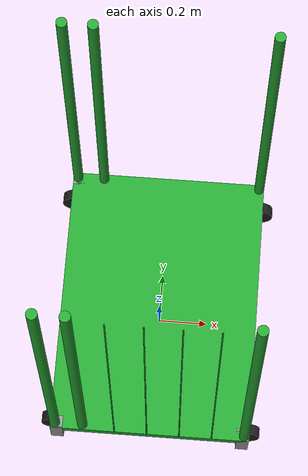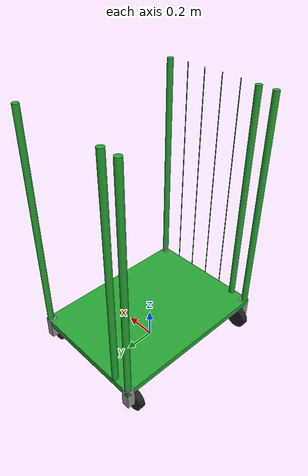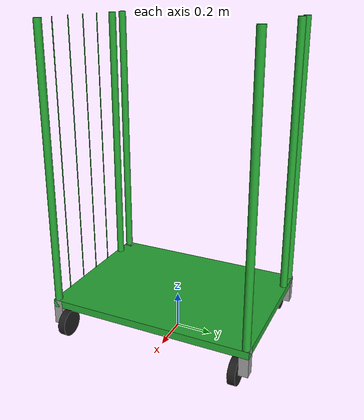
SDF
<sdf version="1.6">
 <model name="temp07">
  <link name="link_0">
   <pose>0 0 0.22 0 -0 0</pose>
   <inertial>
    <mass>1</mass>
    <inertia>
     <ixx>0.166667</ixx>
     <ixy>0</ixy>
     <ixz>0</ixz>
     <iyy>0.166667</iyy>
     <iyz>0</iyz>
     <izz>0.166667</izz>
    </inertia>
   </inertial>
   <visual name="visual">
    <geometry><box><size>0.8 1.1 0.04</size></box></geometry>
    <material>
     <lighting>1</lighting>
     <script><uri>file://media/materials/scripts/gazebo.material</uri><name>Gazebo/Green</name></script>
     <ambient>0 0.4 0 0</ambient>
     <diffuse>0 0.4 0 0</diffuse>
     <specular>0.1 0.1 0.1 1</specular>
     <emissive>0 0 0 1</emissive>
     <shader type="vertex"><normal_map>__default__</normal_map></shader>
    </material>
   </visual>
   <collision name="collision">
    <geometry><box><size>0.8 1.1 0.04</size></box></geometry>
    <surface>
     <friction>
      <ode><mu>1</mu><mu2>1</mu2><fdir1>0 0 0</fdir1><slip1>0</slip1><slip2>0</slip2></ode>
      <torsional>
       <coefficient>1</coefficient>
       <patch_radius>0</patch_radius>
       <surface_radius>0</surface_radius>
       <use_patch_radius>1</use_patch_radius>
       <ode><slip>0</slip></ode>
      </torsional>
     </friction>
     <bounce><restitution_coefficient>0</restitution_coefficient><threshold>1e+06</threshold></bounce>
     <contact>
      <collide_without_contact>0</collide_without_contact>
      <collide_without_contact_bitmask>1</collide_without_contact_bitmask>
      <collide_bitmask>1</collide_bitmask>
      <ode>
       <soft_cfm>0</soft_cfm>
       <soft_erp>0.2</soft_erp>
       <kp>1e+13</kp>
       <kd>1</kd>
       <max_vel>0.01</max_vel>
       <min_depth>0</min_depth>
      </ode>
      <bullet>
       <split_impulse>1</split_impulse>
       <split_impulse_penetration_threshold>-0.01</split_impulse_penetration_threshold>
       <soft_cfm>0</soft_cfm>
       <soft_erp>0.2</soft_erp>
       <kp>1e+13</kp>
       <kd>1</kd>
      </bullet>
     </contact>
    </surface>
   </collision>
  </link>
  <link name="link_0_0">
   <pose>-0.375 -0.525 0.17 0 -0 0</pose>
   <inertial>
    <mass>1</mass>
    <inertia>
     <ixx>0.166667</ixx>
     <ixy>0</ixy>
     <ixz>0</ixz>
     <iyy>0.166667</iyy>
     <iyz>0</iyz>
     <izz>0.166667</izz>
    </inertia>
   </inertial>
   <visual name="visual">
    <geometry><box><size>0.05 0.05 0.14</size></box></geometry>
    <material>
     <lighting>1</lighting>
     <script><uri>file://media/materials/scripts/gazebo.material</uri><name>Gazebo/Grey</name></script>
     <ambient>0.3 0.3 0.3 1</ambient>
     <diffuse>0.7 0.7 0.7 1</diffuse>
     <specular>0.01 0.01 0.01 1</specular>
     <emissive>0 0 0 1</emissive>
     <shader type="vertex"><normal_map>__default__</normal_map></shader>
    </material>
   </visual>
   <collision name="collision">
    <geometry><box><size>0.05 0.05 0.14</size></box></geometry>
    <surface>
     <friction>
      <ode><mu>1</mu><mu2>1</mu2><fdir1>0 0 0</fdir1><slip1>0</slip1><slip2>0</slip2></ode>
      <torsional>
       <coefficient>1</coefficient>
       <patch_radius>0</patch_radius>
       <surface_radius>0</surface_radius>
       <use_patch_radius>1</use_patch_radius>
       <ode><slip>0</slip></ode>
      </torsional>
     </friction>
     <bounce><restitution_coefficient>0</restitution_coefficient><threshold>1e+06</threshold></bounce>
     <contact>
      <collide_without_contact>0</collide_without_contact>
      <collide_without_contact_bitmask>1</collide_without_contact_bitmask>
      <collide_bitmask>1</collide_bitmask>
      <ode>
       <soft_cfm>0</soft_cfm>
       <soft_erp>0.2</soft_erp>
       <kp>1e+13</kp>
       <kd>1</kd>
       <max_vel>0.01</max_vel>
       <min_depth>0</min_depth>
      </ode>
      <bullet>
       <split_impulse>1</split_impulse>
       <split_impulse_penetration_threshold>-0.01</split_impulse_penetration_threshold>
       <soft_cfm>0</soft_cfm>
       <soft_erp>0.2</soft_erp>
       <kp>1e+13</kp>
       <kd>1</kd>
      </bullet>
     </contact>
    </surface>
   </collision>
  </link>
  <link name="link_0_0_clone">
   <pose>0.375 -0.525 0.17 0 -0 0</pose>
   <inertial>
    <mass>1</mass>
    <inertia>
     <ixx>0.166667</ixx>
     <ixy>0</ixy>
     <ixz>0</ixz>
     <iyy>0.166667</iyy>
     <iyz>0</iyz>
     <izz>0.166667</izz>
    </inertia>
   </inertial>
   <visual name="visual_0">
    <geometry><box><size>0.05 0.05 0.14</size></box></geometry>
    <material>
     <lighting>1</lighting>
     <script><uri>file://media/materials/scripts/gazebo.material</uri><name>Gazebo/Grey</name></script>
     <ambient>0.3 0.3 0.3 1</ambient>
     <diffuse>0.7 0.7 0.7 1</diffuse>
     <specular>0.01 0.01 0.01 1</specular>
     <emissive>0 0 0 1</emissive>
     <shader type="vertex"><normal_map>__default__</normal_map></shader>
    </material>
   </visual>
   <collision name="collision">
    <geometry><box><size>0.05 0.05 0.14</size></box></geometry>
    <surface>
     <friction>
      <ode><mu>1</mu><mu2>1</mu2><fdir1>0 0 0</fdir1><slip1>0</slip1><slip2>0</slip2></ode>
      <torsional>
       <coefficient>1</coefficient>
       <patch_radius>0</patch_radius>
       <surface_radius>0</surface_radius>
       <use_patch_radius>1</use_patch_radius>
       <ode><slip>0</slip></ode>
      </torsional>
     </friction>
     <bounce><restitution_coefficient>0</restitution_coefficient><threshold>1e+06</threshold></bounce>
     <contact>
      <collide_without_contact>0</collide_without_contact>
      <collide_without_contact_bitmask>1</collide_without_contact_bitmask>
      <collide_bitmask>1</collide_bitmask>
      <ode>
       <soft_cfm>0</soft_cfm>
       <soft_erp>0.2</soft_erp>
       <kp>1e+13</kp>
       <kd>1</kd>
       <max_vel>0.01</max_vel>
       <min_depth>0</min_depth>
      </ode>
      <bullet>
       <split_impulse>1</split_impulse>
       <split_impulse_penetration_threshold>-0.01</split_impulse_penetration_threshold>
       <soft_cfm>0</soft_cfm>
       <soft_erp>0.2</soft_erp>
       <kp>1e+13</kp>
       <kd>1</kd>
      </bullet>
     </contact>
    </surface>
   </collision>
  </link>
  <link name="link_0_0_clone_0">
   <pose>-0.375 0.525 0.17 0 -0 0</pose>
   <inertial>
    <mass>1</mass>
    <inertia>
     <ixx>0.166667</ixx>
     <ixy>0</ixy>
     <ixz>0</ixz>
     <iyy>0.166667</iyy>
     <iyz>0</iyz>
     <izz>0.166667</izz>
    </inertia>
   </inertial>
   <visual name="visual_0">
    <geometry><box><size>0.05 0.05 0.14</size></box></geometry>
    <material>
     <lighting>1</lighting>
     <script><uri>file://media/materials/scripts/gazebo.material</uri><name>Gazebo/Grey</name></script>
     <ambient>0.3 0.3 0.3 1</ambient>
     <diffuse>0.7 0.7 0.7 1</diffuse>
     <specular>0.01 0.01 0.01 1</specular>
     <emissive>0 0 0 1</emissive>
     <shader type="vertex"><normal_map>__default__</normal_map></shader>
    </material>
   </visual>
   <collision name="collision">
    <geometry><box><size>0.05 0.05 0.14</size></box></geometry>
    <surface>
     <friction>
      <ode><mu>1</mu><mu2>1</mu2><fdir1>0 0 0</fdir1><slip1>0</slip1><slip2>0</slip2></ode>
      <torsional>
       <coefficient>1</coefficient>
       <patch_radius>0</patch_radius>
       <surface_radius>0</surface_radius>
       <use_patch_radius>1</use_patch_radius>
       <ode><slip>0</slip></ode>
      </torsional>
     </friction>
     <bounce><restitution_coefficient>0</restitution_coefficient><threshold>1e+06</threshold></bounce>
     <contact>
      <collide_without_contact>0</collide_without_contact>
      <collide_without_contact_bitmask>1</collide_without_contact_bitmask>
      <collide_bitmask>1</collide_bitmask>
      <ode>
       <soft_cfm>0</soft_cfm>
       <soft_erp>0.2</soft_erp>
       <kp>1e+13</kp>
       <kd>1</kd>
       <max_vel>0.01</max_vel>
       <min_depth>0</min_depth>
      </ode>
      <bullet>
       <split_impulse>1</split_impulse>
       <split_impulse_penetration_threshold>-0.01</split_impulse_penetration_threshold>
       <soft_cfm>0</soft_cfm>
       <soft_erp>0.2</soft_erp>
       <kp>1e+13</kp>
       <kd>1</kd>
      </bullet>
     </contact>
    </surface>
   </collision>
  </link>
  <link name="link_0_0_clone_1">
   <pose>0.375 0.525 0.17 0 -0 0</pose>
   <inertial>
    <mass>1</mass>
    <inertia>
     <ixx>0.166667</ixx>
     <ixy>0</ixy>
     <ixz>0</ixz>
     <iyy>0.166667</iyy>
     <iyz>0</iyz>
     <izz>0.166667</izz>
    </inertia>
   </inertial>
   <visual name="visual_0">
    <geometry><box><size>0.05 0.05 0.14</size></box></geometry>
    <material>
     <lighting>1</lighting>
     <script><uri>file://media/materials/scripts/gazebo.material</uri><name>Gazebo/Grey</name></script>
     <ambient>0.3 0.3 0.3 1</ambient>
     <diffuse>0.7 0.7 0.7 1</diffuse>
     <specular>0.01 0.01 0.01 1</specular>
     <emissive>0 0 0 1</emissive>
     <shader type="vertex"><normal_map>__default__</normal_map></shader>
    </material>
   </visual>
   <collision name="collision">
    <geometry><box><size>0.05 0.05 0.14</size></box></geometry>
    <surface>
     <friction>
      <ode><mu>1</mu><mu2>1</mu2><fdir1>0 0 0</fdir1><slip1>0</slip1><slip2>0</slip2></ode>
      <torsional>
       <coefficient>1</coefficient>
       <patch_radius>0</patch_radius>
       <surface_radius>0</surface_radius>
       <use_patch_radius>1</use_patch_radius>
       <ode><slip>0</slip></ode>
      </torsional>
     </friction>
     <bounce><restitution_coefficient>0</restitution_coefficient><threshold>1e+06</threshold></bounce>
     <contact>
      <collide_without_contact>0</collide_without_contact>
      <collide_without_contact_bitmask>1</collide_without_contact_bitmask>
      <collide_bitmask>1</collide_bitmask>
      <ode>
       <soft_cfm>0</soft_cfm>
       <soft_erp>0.2</soft_erp>
       <kp>1e+13</kp>
       <kd>1</kd>
       <max_vel>0.01</max_vel>
       <min_depth>0</min_depth>
      </ode>
      <bullet>
       <split_impulse>1</split_impulse>
       <split_impulse_penetration_threshold>-0.01</split_impulse_penetration_threshold>
       <soft_cfm>0</soft_cfm>
       <soft_erp>0.2</soft_erp>
       <kp>1e+13</kp>
       <kd>1</kd>
      </bullet>
     </contact>
    </surface>
   </collision>
  </link>
  <link name="link_0_1">
   <pose>0.38 -0.53 0.95 0 -0 0</pose>
   <inertial>
    <mass>1</mass>
    <inertia><ixx>0.145833</ixx><ixy>0</ixy><ixz>0</ixz><iyy>0.145833</iyy><iyz>0</iyz><izz>0.125</izz></inertia>
   </inertial>
   <visual name="visual">
    <geometry><cylinder><radius>0.02</radius><length>1.5</length></cylinder></geometry>
    <material>
     <lighting>1</lighting>
     <script><uri>file://media/materials/scripts/gazebo.material</uri><name>Gazebo/Green</name></script>
     <ambient>0 0.4 0 0</ambient>
     <diffuse>0 0.4 0 0</diffuse>
     <specular>0.1 0.1 0.1 1</specular>
     <emissive>0 0 0 1</emissive>
     <shader type="vertex"><normal_map>__default__</normal_map></shader>
    </material>
   </visual>
   <collision name="collision">
    <geometry><cylinder><radius>0.02</radius><length>1.5</length></cylinder></geometry>
    <surface>
     <friction>
      <ode><mu>1</mu><mu2>1</mu2><fdir1>0 0 0</fdir1><slip1>0</slip1><slip2>0</slip2></ode>
      <torsional>
       <coefficient>1</coefficient>
       <patch_radius>0</patch_radius>
       <surface_radius>0</surface_radius>
       <use_patch_radius>1</use_patch_radius>
       <ode><slip>0</slip></ode>
      </torsional>
     </friction>
     <bounce><restitution_coefficient>0</restitution_coefficient><threshold>1e+06</threshold></bounce>
     <contact>
      <collide_without_contact>0</collide_without_contact>
      <collide_without_contact_bitmask>1</collide_without_contact_bitmask>
      <collide_bitmask>1</collide_bitmask>
      <ode>
       <soft_cfm>0</soft_cfm>
       <soft_erp>0.2</soft_erp>
       <kp>1e+13</kp>
       <kd>1</kd>
       <max_vel>0.01</max_vel>
       <min_depth>0</min_depth>
      </ode>
      <bullet>
       <split_impulse>1</split_impulse>
       <split_impulse_penetration_threshold>-0.01</split_impulse_penetration_threshold>
       <soft_cfm>0</soft_cfm>
       <soft_erp>0.2</soft_erp>
       <kp>1e+13</kp>
       <kd>1</kd>
      </bullet>
     </contact>
    </surface>
   </collision>
  </link>
  <link name="link_0_1_clone">
   <pose>-0.27 -0.53 0.95 0 -0 0</pose>
   <inertial>
    <mass>1</mass>
    <inertia><ixx>0.145833</ixx><ixy>0</ixy><ixz>0</ixz><iyy>0.145833</iyy><iyz>0</iyz><izz>0.125</izz></inertia>
   </inertial>
   <visual name="visual">
    <geometry><cylinder><radius>0.02</radius><length>1.5</length></cylinder></geometry>
    <material>
     <lighting>1</lighting>
     <script><uri>file://media/materials/scripts/gazebo.material</uri><name>Gazebo/Green</name></script>
     <ambient>0 0.4 0 0</ambient>
     <diffuse>0 0.4 0 0</diffuse>
     <specular>0.1 0.1 0.1 1</specular>
     <emissive>0 0 0 1</emissive>
     <shader type="vertex"><normal_map>__default__</normal_map></shader>
    </material>
   </visual>
   <collision name="collision">
    <geometry><cylinder><radius>0.02</radius><length>1.5</length></cylinder></geometry>
    <surface>
     <friction>
      <ode><mu>1</mu><mu2>1</mu2><fdir1>0 0 0</fdir1><slip1>0</slip1><slip2>0</slip2></ode>
      <torsional>
       <coefficient>1</coefficient>
       <patch_radius>0</patch_radius>
       <surface_radius>0</surface_radius>
       <use_patch_radius>1</use_patch_radius>
       <ode><slip>0</slip></ode>
      </torsional>
     </friction>
     <bounce><restitution_coefficient>0</restitution_coefficient><threshold>1e+06</threshold></bounce>
     <contact>
      <collide_without_contact>0</collide_without_contact>
      <collide_without_contact_bitmask>1</collide_without_contact_bitmask>
      <collide_bitmask>1</collide_bitmask>
      <ode>
       <soft_cfm>0</soft_cfm>
       <soft_erp>0.2</soft_erp>
       <kp>1e+13</kp>
       <kd>1</kd>
       <max_vel>0.01</max_vel>
       <min_depth>0</min_depth>
      </ode>
      <bullet>
       <split_impulse>1</split_impulse>
       <split_impulse_penetration_threshold>-0.01</split_impulse_penetration_threshold>
       <soft_cfm>0</soft_cfm>
       <soft_erp>0.2</soft_erp>
       <kp>1e+13</kp>
       <kd>1</kd>
      </bullet>
     </contact>
    </surface>
   </collision>
  </link>
  <link name="link_0_1_clone_0">
   <pose>-0.38 -0.53 0.95 0 -0 0</pose>
   <inertial>
    <mass>1</mass>
    <inertia><ixx>0.145833</ixx><ixy>0</ixy><ixz>0</ixz><iyy>0.145833</iyy><iyz>0</iyz><izz>0.125</izz></inertia>
   </inertial>
   <visual name="visual">
    <geometry><cylinder><radius>0.02</radius><length>1.5</length></cylinder></geometry>
    <material>
     <lighting>1</lighting>
     <script><uri>file://media/materials/scripts/gazebo.material</uri><name>Gazebo/Green</name></script>
     <ambient>0 0.4 0 0</ambient>
     <diffuse>0 0.4 0 0</diffuse>
     <specular>0.1 0.1 0.1 1</specular>
     <emissive>0 0 0 1</emissive>
     <shader type="vertex"><normal_map>__default__</normal_map></shader>
    </material>
   </visual>
   <collision name="collision">
    <geometry><cylinder><radius>0.02</radius><length>1.5</length></cylinder></geometry>
    <surface>
     <friction>
      <ode><mu>1</mu><mu2>1</mu2><fdir1>0 0 0</fdir1><slip1>0</slip1><slip2>0</slip2></ode>
      <torsional>
       <coefficient>1</coefficient>
       <patch_radius>0</patch_radius>
       <surface_radius>0</surface_radius>
       <use_patch_radius>1</use_patch_radius>
       <ode><slip>0</slip></ode>
      </torsional>
     </friction>
     <bounce><restitution_coefficient>0</restitution_coefficient><threshold>1e+06</threshold></bounce>
     <contact>
      <collide_without_contact>0</collide_without_contact>
      <collide_without_contact_bitmask>1</collide_without_contact_bitmask>
      <collide_bitmask>1</collide_bitmask>
      <ode>
       <soft_cfm>0</soft_cfm>
       <soft_erp>0.2</soft_erp>
       <kp>1e+13</kp>
       <kd>1</kd>
       <max_vel>0.01</max_vel>
       <min_depth>0</min_depth>
      </ode>
      <bullet>
       <split_impulse>1</split_impulse>
       <split_impulse_penetration_threshold>-0.01</split_impulse_penetration_threshold>
       <soft_cfm>0</soft_cfm>
       <soft_erp>0.2</soft_erp>
       <kp>1e+13</kp>
       <kd>1</kd>
      </bullet>
     </contact>
    </surface>
   </collision>
  </link>
  <link name="link_0_1_clone_1">
   <pose>-0.38 0.53 0.95 0 -0 0</pose>
   <inertial>
    <mass>1</mass>
    <inertia><ixx>0.145833</ixx><ixy>0</ixy><ixz>0</ixz><iyy>0.145833</iyy><iyz>0</iyz><izz>0.125</izz></inertia>
   </inertial>
   <visual name="visual">
    <geometry><cylinder><radius>0.02</radius><length>1.5</length></cylinder></geometry>
    <material>
     <lighting>1</lighting>
     <script><uri>file://media/materials/scripts/gazebo.material</uri><name>Gazebo/Green</name></script>
     <ambient>0 0.4 0 0</ambient>
     <diffuse>0 0.4 0 0</diffuse>
     <specular>0.1 0.1 0.1 1</specular>
     <emissive>0 0 0 1</emissive>
     <shader type="vertex"><normal_map>__default__</normal_map></shader>
    </material>
   </visual>
   <collision name="collision">
    <geometry><cylinder><radius>0.02</radius><length>1.5</length></cylinder></geometry>
    <surface>
     <friction>
      <ode><mu>1</mu><mu2>1</mu2><fdir1>0 0 0</fdir1><slip1>0</slip1><slip2>0</slip2></ode>
      <torsional>
       <coefficient>1</coefficient>
       <patch_radius>0</patch_radius>
       <surface_radius>0</surface_radius>
       <use_patch_radius>1</use_patch_radius>
       <ode><slip>0</slip></ode>
      </torsional>
     </friction>
     <bounce><restitution_coefficient>0</restitution_coefficient><threshold>1e+06</threshold></bounce>
     <contact>
      <collide_without_contact>0</collide_without_contact>
      <collide_without_contact_bitmask>1</collide_without_contact_bitmask>
      <collide_bitmask>1</collide_bitmask>
      <ode>
       <soft_cfm>0</soft_cfm>
       <soft_erp>0.2</soft_erp>
       <kp>1e+13</kp>
       <kd>1</kd>
       <max_vel>0.01</max_vel>
       <min_depth>0</min_depth>
      </ode>
      <bullet>
       <split_impulse>1</split_impulse>
       <split_impulse_penetration_threshold>-0.01</split_impulse_penetration_threshold>
       <soft_cfm>0</soft_cfm>
       <soft_erp>0.2</soft_erp>
       <kp>1e+13</kp>
       <kd>1</kd>
      </bullet>
     </contact>
    </surface>
   </collision>
  </link>
  <link name="link_0_1_clone_2">
   <pose>-0.14 -0.5475 0.95 0 -0 0</pose>
   <inertial>
    <mass>1</mass>
    <inertia><ixx>0.145833</ixx><ixy>0</ixy><ixz>0</ixz><iyy>0.145833</iyy><iyz>0</iyz><izz>0.125</izz></inertia>
   </inertial>
   <visual name="visual">
    <geometry><cylinder><radius>0.0025</radius><length>1.5</length></cylinder></geometry>
    <material>
     <lighting>1</lighting>
     <script><uri>file://media/materials/scripts/gazebo.material</uri><name>Gazebo/Green</name></script>
     <ambient>0 0.4 0 0</ambient>
     <diffuse>0 0.4 0 0</diffuse>
     <specular>0.1 0.1 0.1 1</specular>
     <emissive>0 0 0 1</emissive>
     <shader type="vertex"><normal_map>__default__</normal_map></shader>
    </material>
   </visual>
   <collision name="collision">
    <geometry><cylinder><radius>0.0025</radius><length>1.5</length></cylinder></geometry>
    <surface>
     <friction>
      <ode><mu>1</mu><mu2>1</mu2><fdir1>0 0 0</fdir1><slip1>0</slip1><slip2>0</slip2></ode>
      <torsional>
       <coefficient>1</coefficient>
       <patch_radius>0</patch_radius>
       <surface_radius>0</surface_radius>
       <use_patch_radius>1</use_patch_radius>
       <ode><slip>0</slip></ode>
      </torsional>
     </friction>
     <bounce><restitution_coefficient>0</restitution_coefficient><threshold>1e+06</threshold></bounce>
     <contact>
      <collide_without_contact>0</collide_without_contact>
      <collide_without_contact_bitmask>1</collide_without_contact_bitmask>
      <collide_bitmask>1</collide_bitmask>
      <ode>
       <soft_cfm>0</soft_cfm>
       <soft_erp>0.2</soft_erp>
       <kp>1e+13</kp>
       <kd>1</kd>
       <max_vel>0.01</max_vel>
       <min_depth>0</min_depth>
      </ode>
      <bullet>
       <split_impulse>1</split_impulse>
       <split_impulse_penetration_threshold>-0.01</split_impulse_penetration_threshold>
       <soft_cfm>0</soft_cfm>
       <soft_erp>0.2</soft_erp>
       <kp>1e+13</kp>
       <kd>1</kd>
      </bullet>
     </contact>
    </surface>
   </collision>
  </link>
  <link name="link_0_1_clone_2_clone">
   <pose>0.25 -0.5475 0.95 0 -0 0</pose>
   <inertial>
    <mass>1</mass>
    <inertia><ixx>0.145833</ixx><ixy>0</ixy><ixz>0</ixz><iyy>0.145833</iyy><iyz>0</iyz><izz>0.125</izz></inertia>
   </inertial>
   <visual name="visual">
    <geometry><cylinder><radius>0.0025</radius><length>1.5</length></cylinder></geometry>
    <material>
     <lighting>1</lighting>
     <script><uri>file://media/materials/scripts/gazebo.material</uri><name>Gazebo/Green</name></script>
     <ambient>0 0.4 0 0</ambient>
     <diffuse>0 0.4 0 0</diffuse>
     <specular>0.1 0.1 0.1 1</specular>
     <emissive>0 0 0 1</emissive>
     <shader type="vertex"><normal_map>__default__</normal_map></shader>
    </material>
   </visual>
   <collision name="collision">
    <geometry><cylinder><radius>0.0025</radius><length>1.5</length></cylinder></geometry>
    <surface>
     <friction>
      <ode><mu>1</mu><mu2>1</mu2><fdir1>0 0 0</fdir1><slip1>0</slip1><slip2>0</slip2></ode>
      <torsional>
       <coefficient>1</coefficient>
       <patch_radius>0</patch_radius>
       <surface_radius>0</surface_radius>
       <use_patch_radius>1</use_patch_radius>
       <ode><slip>0</slip></ode>
      </torsional>
     </friction>
     <bounce><restitution_coefficient>0</restitution_coefficient><threshold>1e+06</threshold></bounce>
     <contact>
      <collide_without_contact>0</collide_without_contact>
      <collide_without_contact_bitmask>1</collide_without_contact_bitmask>
      <collide_bitmask>1</collide_bitmask>
      <ode>
       <soft_cfm>0</soft_cfm>
       <soft_erp>0.2</soft_erp>
       <kp>1e+13</kp>
       <kd>1</kd>
       <max_vel>0.01</max_vel>
       <min_depth>0</min_depth>
      </ode>
      <bullet>
       <split_impulse>1</split_impulse>
       <split_impulse_penetration_threshold>-0.01</split_impulse_penetration_threshold>
       <soft_cfm>0</soft_cfm>
       <soft_erp>0.2</soft_erp>
       <kp>1e+13</kp>
       <kd>1</kd>
      </bullet>
     </contact>
    </surface>
   </collision>
  </link>
  <link name="link_0_1_clone_2_clone_0">
   <pose>0.12 -0.5475 0.95 0 -0 0</pose>
   <inertial>
    <mass>1</mass>
    <inertia><ixx>0.145833</ixx><ixy>0</ixy><ixz>0</ixz><iyy>0.145833</iyy><iyz>0</iyz><izz>0.125</izz></inertia>
   </inertial>
   <visual name="visual">
    <geometry><cylinder><radius>0.0025</radius><length>1.5</length></cylinder></geometry>
    <material>
     <lighting>1</lighting>
     <script><uri>file://media/materials/scripts/gazebo.material</uri><name>Gazebo/Green</name></script>
     <ambient>0 0.4 0 0</ambient>
     <diffuse>0 0.4 0 0</diffuse>
     <specular>0.1 0.1 0.1 1</specular>
     <emissive>0 0 0 1</emissive>
     <shader type="vertex"><normal_map>__default__</normal_map></shader>
    </material>
   </visual>
   <collision name="collision">
    <geometry><cylinder><radius>0.0025</radius><length>1.5</length></cylinder></geometry>
    <surface>
     <friction>
      <ode><mu>1</mu><mu2>1</mu2><fdir1>0 0 0</fdir1><slip1>0</slip1><slip2>0</slip2></ode>
      <torsional>
       <coefficient>1</coefficient>
       <patch_radius>0</patch_radius>
       <surface_radius>0</surface_radius>
       <use_patch_radius>1</use_patch_radius>
       <ode><slip>0</slip></ode>
      </torsional>
     </friction>
     <bounce><restitution_coefficient>0</restitution_coefficient><threshold>1e+06</threshold></bounce>
     <contact>
      <collide_without_contact>0</collide_without_contact>
      <collide_without_contact_bitmask>1</collide_without_contact_bitmask>
      <collide_bitmask>1</collide_bitmask>
      <ode>
       <soft_cfm>0</soft_cfm>
       <soft_erp>0.2</soft_erp>
       <kp>1e+13</kp>
       <kd>1</kd>
       <max_vel>0.01</max_vel>
       <min_depth>0</min_depth>
      </ode>
      <bullet>
       <split_impulse>1</split_impulse>
       <split_impulse_penetration_threshold>-0.01</split_impulse_penetration_threshold>
       <soft_cfm>0</soft_cfm>
       <soft_erp>0.2</soft_erp>
       <kp>1e+13</kp>
       <kd>1</kd>
      </bullet>
     </contact>
    </surface>
   </collision>
  </link>
  <link name="link_0_1_clone_2_clone_1">
   <pose>-0.01 -0.5475 0.95 0 -0 0</pose>
   <inertial>
    <mass>1</mass>
    <inertia><ixx>0.145833</ixx><ixy>0</ixy><ixz>0</ixz><iyy>0.145833</iyy><iyz>0</iyz><izz>0.125</izz></inertia>
   </inertial>
   <visual name="visual">
    <geometry><cylinder><radius>0.0025</radius><length>1.5</length></cylinder></geometry>
    <material>
     <lighting>1</lighting>
     <script><uri>file://media/materials/scripts/gazebo.material</uri><name>Gazebo/Green</name></script>
     <ambient>0 0.4 0 0</ambient>
     <diffuse>0 0.4 0 0</diffuse>
     <specular>0.1 0.1 0.1 1</specular>
     <emissive>0 0 0 1</emissive>
     <shader type="vertex"><normal_map>__default__</normal_map></shader>
    </material>
   </visual>
   <collision name="collision">
    <geometry><cylinder><radius>0.0025</radius><length>1.5</length></cylinder></geometry>
    <surface>
     <friction>
      <ode><mu>1</mu><mu2>1</mu2><fdir1>0 0 0</fdir1><slip1>0</slip1><slip2>0</slip2></ode>
      <torsional>
       <coefficient>1</coefficient>
       <patch_radius>0</patch_radius>
       <surface_radius>0</surface_radius>
       <use_patch_radius>1</use_patch_radius>
       <ode><slip>0</slip></ode>
      </torsional>
     </friction>
     <bounce><restitution_coefficient>0</restitution_coefficient><threshold>1e+06</threshold></bounce>
     <contact>
      <collide_without_contact>0</collide_without_contact>
      <collide_without_contact_bitmask>1</collide_without_contact_bitmask>
      <collide_bitmask>1</collide_bitmask>
      <ode>
       <soft_cfm>0</soft_cfm>
       <soft_erp>0.2</soft_erp>
       <kp>1e+13</kp>
       <kd>1</kd>
       <max_vel>0.01</max_vel>
       <min_depth>0</min_depth>
      </ode>
      <bullet>
       <split_impulse>1</split_impulse>
       <split_impulse_penetration_threshold>-0.01</split_impulse_penetration_threshold>
       <soft_cfm>0</soft_cfm>
       <soft_erp>0.2</soft_erp>
       <kp>1e+13</kp>
       <kd>1</kd>
      </bullet>
     </contact>
    </surface>
   </collision>
  </link>
  <link name="link_0_1_clone_3">
   <pose>0.38 0.53 0.95 0 -0 0</pose>
   <inertial>
    <mass>1</mass>
    <inertia><ixx>0.145833</ixx><ixy>0</ixy><ixz>0</ixz><iyy>0.145833</iyy><iyz>0</iyz><izz>0.125</izz></inertia>
   </inertial>
   <visual name="visual">
    <geometry><cylinder><radius>0.02</radius><length>1.5</length></cylinder></geometry>
    <material>
     <lighting>1</lighting>
     <script><uri>file://media/materials/scripts/gazebo.material</uri><name>Gazebo/Green</name></script>
     <ambient>0 0.4 0 0</ambient>
     <diffuse>0 0.4 0 0</diffuse>
     <specular>0.1 0.1 0.1 1</specular>
     <emissive>0 0 0 1</emissive>
     <shader type="vertex"><normal_map>__default__</normal_map></shader>
    </material>
   </visual>
   <collision name="collision">
    <geometry><cylinder><radius>0.02</radius><length>1.5</length></cylinder></geometry>
    <surface>
     <friction>
      <ode><mu>1</mu><mu2>1</mu2><fdir1>0 0 0</fdir1><slip1>0</slip1><slip2>0</slip2></ode>
      <torsional>
       <coefficient>1</coefficient>
       <patch_radius>0</patch_radius>
       <surface_radius>0</surface_radius>
       <use_patch_radius>1</use_patch_radius>
       <ode><slip>0</slip></ode>
      </torsional>
     </friction>
     <bounce><restitution_coefficient>0</restitution_coefficient><threshold>1e+06</threshold></bounce>
     <contact>
      <collide_without_contact>0</collide_without_contact>
      <collide_without_contact_bitmask>1</collide_without_contact_bitmask>
      <collide_bitmask>1</collide_bitmask>
      <ode>
       <soft_cfm>0</soft_cfm>
       <soft_erp>0.2</soft_erp>
       <kp>1e+13</kp>
       <kd>1</kd>
       <max_vel>0.01</max_vel>
       <min_depth>0</min_depth>
      </ode>
      <bullet>
       <split_impulse>1</split_impulse>
       <split_impulse_penetration_threshold>-0.01</split_impulse_penetration_threshold>
       <soft_cfm>0</soft_cfm>
       <soft_erp>0.2</soft_erp>
       <kp>1e+13</kp>
       <kd>1</kd>
      </bullet>
     </contact>
    </surface>
   </collision>
  </link>
  <link name="link_0_1_clone_clone">
   <pose>-0.27 0.53 0.95 0 -0 0</pose>
   <inertial>
    <mass>1</mass>
    <inertia><ixx>0.145833</ixx><ixy>0</ixy><ixz>0</ixz><iyy>0.145833</iyy><iyz>0</iyz><izz>0.125</izz></inertia>
   </inertial>
   <visual name="visual">
    <geometry><cylinder><radius>0.02</radius><length>1.5</length></cylinder></geometry>
    <material>
     <lighting>1</lighting>
     <script><uri>file://media/materials/scripts/gazebo.material</uri><name>Gazebo/Green</name></script>
     <ambient>0 0.4 0 0</ambient>
     <diffuse>0 0.4 0 0</diffuse>
     <specular>0.1 0.1 0.1 1</specular>
     <emissive>0 0 0 1</emissive>
     <shader type="vertex"><normal_map>__default__</normal_map></shader>
    </material>
   </visual>
   <collision name="collision">
    <geometry><cylinder><radius>0.02</radius><length>1.5</length></cylinder></geometry>
    <surface>
     <friction>
      <ode><mu>1</mu><mu2>1</mu2><fdir1>0 0 0</fdir1><slip1>0</slip1><slip2>0</slip2></ode>
      <torsional>
       <coefficient>1</coefficient>
       <patch_radius>0</patch_radius>
       <surface_radius>0</surface_radius>
       <use_patch_radius>1</use_patch_radius>
       <ode><slip>0</slip></ode>
      </torsional>
     </friction>
     <bounce><restitution_coefficient>0</restitution_coefficient><threshold>1e+06</threshold></bounce>
     <contact>
      <collide_without_contact>0</collide_without_contact>
      <collide_without_contact_bitmask>1</collide_without_contact_bitmask>
      <collide_bitmask>1</collide_bitmask>
      <ode>
       <soft_cfm>0</soft_cfm>
       <soft_erp>0.2</soft_erp>
       <kp>1e+13</kp>
       <kd>1</kd>
       <max_vel>0.01</max_vel>
       <min_depth>0</min_depth>
      </ode>
      <bullet>
       <split_impulse>1</split_impulse>
       <split_impulse_penetration_threshold>-0.01</split_impulse_penetration_threshold>
       <soft_cfm>0</soft_cfm>
       <soft_erp>0.2</soft_erp>
       <kp>1e+13</kp>
       <kd>1</kd>
      </bullet>
     </contact>
    </surface>
   </collision>
  </link>
  <link name="link_1">
   <pose>0.375 -0.48 0.104087 1.5707 -0 0</pose>
   <inertial>
    <mass>1</mass>
    <inertia><ixx>0.145833</ixx><ixy>0</ixy><ixz>0</ixz><iyy>0.145833</iyy><iyz>0</iyz><izz>0.125</izz></inertia>
   </inertial>
   <visual name="visual">
    <geometry><cylinder><radius>0.07</radius><length>0.04</length></cylinder></geometry>
    <material>
     <lighting>1</lighting>
     <script><uri>file://media/materials/scripts/gazebo.material</uri><name>Gazebo/Black</name></script>
     <ambient>0 0 0 1</ambient>
     <diffuse>0 0 0 1</diffuse>
     <specular>0.1 0.1 0.1 1</specular>
     <emissive>0 0 0 1</emissive>
     <shader type="vertex"><normal_map>__default__</normal_map></shader>
    </material>
   </visual>
   <collision name="collision">
    <geometry><cylinder><radius>0.07</radius><length>0.04</length></cylinder></geometry>
    <surface>
     <friction>
      <ode><mu>1</mu><mu2>1</mu2><fdir1>0 0 0</fdir1><slip1>0</slip1><slip2>0</slip2></ode>
      <torsional>
       <coefficient>1</coefficient>
       <patch_radius>0</patch_radius>
       <surface_radius>0</surface_radius>
       <use_patch_radius>1</use_patch_radius>
       <ode><slip>0</slip></ode>
      </torsional>
     </friction>
     <bounce><restitution_coefficient>0</restitution_coefficient><threshold>1e+06</threshold></bounce>
     <contact>
      <collide_without_contact>0</collide_without_contact>
      <collide_without_contact_bitmask>1</collide_without_contact_bitmask>
      <collide_bitmask>1</collide_bitmask>
      <ode>
       <soft_cfm>0</soft_cfm>
       <soft_erp>0.2</soft_erp>
       <kp>1e+13</kp>
       <kd>1</kd>
       <max_vel>0.01</max_vel>
       <min_depth>0</min_depth>
      </ode>
      <bullet>
       <split_impulse>1</split_impulse>
       <split_impulse_penetration_threshold>-0.01</split_impulse_penetration_threshold>
       <soft_cfm>0</soft_cfm>
       <soft_erp>0.2</soft_erp>
       <kp>1e+13</kp>
       <kd>1</kd>
      </bullet>
     </contact>
    </surface>
   </collision>
  </link>
  <link name="link_1_clone">
   <pose>0.375 0.479993 0.104087 1.5707 -0 0</pose>
   <inertial>
    <mass>1</mass>
    <inertia><ixx>0.145833</ixx><ixy>0</ixy><ixz>0</ixz><iyy>0.145833</iyy><iyz>0</iyz><izz>0.125</izz></inertia>
   </inertial>
   <visual name="visual">
    <geometry><cylinder><radius>0.07</radius><length>0.04</length></cylinder></geometry>
    <material>
     <lighting>1</lighting>
     <script><uri>file://media/materials/scripts/gazebo.material</uri><name>Gazebo/Black</name></script>
     <ambient>0 0 0 1</ambient>
     <diffuse>0 0 0 1</diffuse>
     <specular>0.1 0.1 0.1 1</specular>
     <emissive>0 0 0 1</emissive>
     <shader type="vertex"><normal_map>__default__</normal_map></shader>
    </material>
   </visual>
   <collision name="collision">
    <geometry><cylinder><radius>0.07</radius><length>0.04</length></cylinder></geometry>
    <surface>
     <friction>
      <ode><mu>1</mu><mu2>1</mu2><fdir1>0 0 0</fdir1><slip1>0</slip1><slip2>0</slip2></ode>
      <torsional>
       <coefficient>1</coefficient>
       <patch_radius>0</patch_radius>
       <surface_radius>0</surface_radius>
       <use_patch_radius>1</use_patch_radius>
       <ode><slip>0</slip></ode>
      </torsional>
     </friction>
     <bounce><restitution_coefficient>0</restitution_coefficient><threshold>1e+06</threshold></bounce>
     <contact>
      <collide_without_contact>0</collide_without_contact>
      <collide_without_contact_bitmask>1</collide_without_contact_bitmask>
      <collide_bitmask>1</collide_bitmask>
      <ode>
       <soft_cfm>0</soft_cfm>
       <soft_erp>0.2</soft_erp>
       <kp>1e+13</kp>
       <kd>1</kd>
       <max_vel>0.01</max_vel>
       <min_depth>0</min_depth>
      </ode>
      <bullet>
       <split_impulse>1</split_impulse>
       <split_impulse_penetration_threshold>-0.01</split_impulse_penetration_threshold>
       <soft_cfm>0</soft_cfm>
       <soft_erp>0.2</soft_erp>
       <kp>1e+13</kp>
       <kd>1</kd>
      </bullet>
     </contact>
    </surface>
   </collision>
  </link>
  <link name="link_1_clone_0">
   <pose>-0.375 -0.479993 0.104087 1.5707 -0 0</pose>
   <inertial>
    <mass>1</mass>
    <inertia><ixx>0.145833</ixx><ixy>0</ixy><ixz>0</ixz><iyy>0.145833</iyy><iyz>0</iyz><izz>0.125</izz></inertia>
   </inertial>
   <visual name="visual">
    <geometry><cylinder><radius>0.07</radius><length>0.04</length></cylinder></geometry>
    <material>
     <lighting>1</lighting>
     <script><uri>file://media/materials/scripts/gazebo.material</uri><name>Gazebo/Black</name></script>
     <ambient>0 0 0 1</ambient>
     <diffuse>0 0 0 1</diffuse>
     <specular>0.1 0.1 0.1 1</specular>
     <emissive>0 0 0 1</emissive>
     <shader type="vertex"><normal_map>__default__</normal_map></shader>
    </material>
   </visual>
   <collision name="collision">
    <geometry><cylinder><radius>0.07</radius><length>0.04</length></cylinder></geometry>
    <surface>
     <friction>
      <ode><mu>1</mu><mu2>1</mu2><fdir1>0 0 0</fdir1><slip1>0</slip1><slip2>0</slip2></ode>
      <torsional>
       <coefficient>1</coefficient>
       <patch_radius>0</patch_radius>
       <surface_radius>0</surface_radius>
       <use_patch_radius>1</use_patch_radius>
       <ode><slip>0</slip></ode>
      </torsional>
     </friction>
     <bounce><restitution_coefficient>0</restitution_coefficient><threshold>1e+06</threshold></bounce>
     <contact>
      <collide_without_contact>0</collide_without_contact>
      <collide_without_contact_bitmask>1</collide_without_contact_bitmask>
      <collide_bitmask>1</collide_bitmask>
      <ode>
       <soft_cfm>0</soft_cfm>
       <soft_erp>0.2</soft_erp>
       <kp>1e+13</kp>
       <kd>1</kd>
       <max_vel>0.01</max_vel>
       <min_depth>0</min_depth>
      </ode>
      <bullet>
       <split_impulse>1</split_impulse>
       <split_impulse_penetration_threshold>-0.01</split_impulse_penetration_threshold>
       <soft_cfm>0</soft_cfm>
       <soft_erp>0.2</soft_erp>
       <kp>1e+13</kp>
       <kd>1</kd>
      </bullet>
     </contact>
    </surface>
   </collision>
  </link>
  <link name="link_1_clone_1">
   <pose>-0.375 0.479993 0.104087 1.5707 -0 0</pose>
   <inertial>
    <mass>1</mass>
    <inertia><ixx>0.145833</ixx><ixy>0</ixy><ixz>0</ixz><iyy>0.145833</iyy><iyz>0</iyz><izz>0.125</izz></inertia>
   </inertial>
   <visual name="visual">
    <geometry><cylinder><radius>0.07</radius><length>0.04</length></cylinder></geometry>
    <material>
     <lighting>1</lighting>
     <script><uri>file://media/materials/scripts/gazebo.material</uri><name>Gazebo/Black</name></script>
     <ambient>0 0 0 1</ambient>
     <diffuse>0 0 0 1</diffuse>
     <specular>0.1 0.1 0.1 1</specular>
     <emissive>0 0 0 1</emissive>
     <shader type="vertex"><normal_map>__default__</normal_map></shader>
    </material>
   </visual>
   <collision name="collision">
    <geometry><cylinder><radius>0.07</radius><length>0.04</length></cylinder></geometry>
    <surface>
     <friction>
      <ode><mu>1</mu><mu2>1</mu2><fdir1>0 0 0</fdir1><slip1>0</slip1><slip2>0</slip2></ode>
      <torsional>
       <coefficient>1</coefficient>
       <patch_radius>0</patch_radius>
       <surface_radius>0</surface_radius>
       <use_patch_radius>1</use_patch_radius>
       <ode><slip>0</slip></ode>
      </torsional>
     </friction>
     <bounce><restitution_coefficient>0</restitution_coefficient><threshold>1e+06</threshold></bounce>
     <contact>
      <collide_without_contact>0</collide_without_contact>
      <collide_without_contact_bitmask>1</collide_without_contact_bitmask>
      <collide_bitmask>1</collide_bitmask>
      <ode>
       <soft_cfm>0</soft_cfm>
       <soft_erp>0.2</soft_erp>
       <kp>1e+13</kp>
       <kd>1</kd>
       <max_vel>0.01</max_vel>
       <min_depth>0</min_depth>
      </ode>
      <bullet>
       <split_impulse>1</split_impulse>
       <split_impulse_penetration_threshold>-0.01</split_impulse_penetration_threshold>
       <soft_cfm>0</soft_cfm>
       <soft_erp>0.2</soft_erp>
       <kp>1e+13</kp>
       <kd>1</kd>
      </bullet>
     </contact>
    </surface>
   </collision>
  </link>
  <joint name="link_0_0_JOINT_1" type="fixed">
   <parent>link_0_0</parent>
   <child>link_0</child>
   <physics>
    <ode><limit><cfm>0</cfm><erp>0.2</erp></limit><suspension><cfm>0</cfm><erp>0.2</erp></suspension></ode>
   </physics>
  </joint>
  <joint name="link_0_0_JOINT_2" type="revolute">
   <parent>link_0_0</parent>
   <child>link_1_clone_0</child>
   <axis>
    <xyz>0 0 1</xyz>
    <use_parent_model_frame>0</use_parent_model_frame>
    <limit>
     <lower>-1.79769e+308</lower>
     <upper>1.79769e+308</upper>
     <effort>-1</effort>
     <velocity>-1</velocity>
    </limit>
    <dynamics>
     <spring_reference>0</spring_reference>
     <spring_stiffness>0</spring_stiffness>
     <damping>0</damping>
     <friction>0</friction>
    </dynamics>
   </axis>
   <physics>
    <ode><limit><cfm>0</cfm><erp>0.2</erp></limit><suspension><cfm>0</cfm><erp>0.2</erp></suspension></ode>
   </physics>
  </joint>
  <joint name="link_0_0_clone_0_JOINT_1" type="revolute">
   <parent>link_0_0_clone_0</parent>
   <child>link_1_clone_1</child>
   <axis>
    <xyz>0 0 1</xyz>
    <use_parent_model_frame>0</use_parent_model_frame>
    <limit>
     <lower>-1.79769e+308</lower>
     <upper>1.79769e+308</upper>
     <effort>-1</effort>
     <velocity>-1</velocity>
    </limit>
    <dynamics>
     <spring_reference>0</spring_reference>
     <spring_stiffness>0</spring_stiffness>
     <damping>0</damping>
     <friction>0</friction>
    </dynamics>
   </axis>
   <physics>
    <ode><limit><cfm>0</cfm><erp>0.2</erp></limit><suspension><cfm>0</cfm><erp>0.2</erp></suspension></ode>
   </physics>
  </joint>
  <joint name="link_0_0_clone_0_JOINT_6" type="fixed">
   <parent>link_0_0_clone_0</parent>
   <child>link_0</child>
   <physics>
    <ode><limit><cfm>0</cfm><erp>0.2</erp></limit><suspension><cfm>0</cfm><erp>0.2</erp></suspension></ode>
   </physics>
  </joint>
  <joint name="link_0_0_clone_1_JOINT_0" type="revolute">
   <parent>link_0_0_clone_1</parent>
   <child>link_1_clone</child>
   <axis>
    <xyz>0 0 1</xyz>
    <use_parent_model_frame>0</use_parent_model_frame>
    <limit>
     <lower>-1.79769e+308</lower>
     <upper>1.79769e+308</upper>
     <effort>-1</effort>
     <velocity>-1</velocity>
    </limit>
    <dynamics>
     <spring_reference>0</spring_reference>
     <spring_stiffness>0</spring_stiffness>
     <damping>0</damping>
     <friction>0</friction>
    </dynamics>
   </axis>
   <physics>
    <ode><limit><cfm>0</cfm><erp>0.2</erp></limit><suspension><cfm>0</cfm><erp>0.2</erp></suspension></ode>
   </physics>
  </joint>
  <joint name="link_0_0_clone_1_JOINT_8" type="fixed">
   <parent>link_0_0_clone_1</parent>
   <child>link_0</child>
   <physics>
    <ode><limit><cfm>0</cfm><erp>0.2</erp></limit><suspension><cfm>0</cfm><erp>0.2</erp></suspension></ode>
   </physics>
  </joint>
  <joint name="link_0_0_clone_JOINT_0" type="revolute">
   <parent>link_0_0_clone</parent>
   <child>link_1</child>
   <axis>
    <xyz>0 0 1</xyz>
    <use_parent_model_frame>0</use_parent_model_frame>
    <limit>
     <lower>-1.79769e+308</lower>
     <upper>1.79769e+308</upper>
     <effort>-1</effort>
     <velocity>-1</velocity>
    </limit>
    <dynamics>
     <spring_reference>0</spring_reference>
     <spring_stiffness>0</spring_stiffness>
     <damping>0</damping>
     <friction>0</friction>
    </dynamics>
   </axis>
   <physics>
    <ode><limit><cfm>0</cfm><erp>0.2</erp></limit><suspension><cfm>0</cfm><erp>0.2</erp></suspension></ode>
   </physics>
  </joint>
  <joint name="link_0_0_clone_JOINT_4" type="fixed">
   <parent>link_0_0_clone</parent>
   <child>link_0</child>
   <physics>
    <ode><limit><cfm>0</cfm><erp>0.2</erp></limit><suspension><cfm>0</cfm><erp>0.2</erp></suspension></ode>
   </physics>
  </joint>
  <joint name="link_0_1_JOINT_1" type="fixed">
   <parent>link_0_1</parent>
   <child>link_0</child>
   <physics>
    <ode><limit><cfm>0</cfm><erp>0.2</erp></limit><suspension><cfm>0</cfm><erp>0.2</erp></suspension></ode>
   </physics>
  </joint>
  <joint name="link_0_1_clone_0_JOINT_12" type="fixed">
   <parent>link_0_1_clone_0</parent>
   <child>link_0</child>
   <physics>
    <ode><limit><cfm>0</cfm><erp>0.2</erp></limit><suspension><cfm>0</cfm><erp>0.2</erp></suspension></ode>
   </physics>
  </joint>
  <joint name="link_0_1_clone_1_JOINT_10" type="fixed">
   <parent>link_0_1_clone_1</parent>
   <child>link_0</child>
   <physics>
    <ode><limit><cfm>0</cfm><erp>0.2</erp></limit><suspension><cfm>0</cfm><erp>0.2</erp></suspension></ode>
   </physics>
  </joint>
  <joint name="link_0_1_clone_2_JOINT_1" type="fixed">
   <parent>link_0_1_clone_2</parent>
   <child>link_0</child>
   <physics>
    <ode><limit><cfm>0</cfm><erp>0.2</erp></limit><suspension><cfm>0</cfm><erp>0.2</erp></suspension></ode>
   </physics>
  </joint>
  <joint name="link_0_1_clone_2_clone_0_JOINT_5" type="fixed">
   <parent>link_0_1_clone_2_clone_0</parent>
   <child>link_0</child>
   <physics>
    <ode><limit><cfm>0</cfm><erp>0.2</erp></limit><suspension><cfm>0</cfm><erp>0.2</erp></suspension></ode>
   </physics>
  </joint>
  <joint name="link_0_1_clone_2_clone_1_JOINT_7" type="fixed">
   <parent>link_0_1_clone_2_clone_1</parent>
   <child>link_0</child>
   <physics>
    <ode><limit><cfm>0</cfm><erp>0.2</erp></limit><suspension><cfm>0</cfm><erp>0.2</erp></suspension></ode>
   </physics>
  </joint>
  <joint name="link_0_1_clone_2_clone_JOINT_3" type="fixed">
   <parent>link_0_1_clone_2_clone</parent>
   <child>link_0</child>
   <physics>
    <ode><limit><cfm>0</cfm><erp>0.2</erp></limit><suspension><cfm>0</cfm><erp>0.2</erp></suspension></ode>
   </physics>
  </joint>
  <joint name="link_0_1_clone_3_JOINT_8" type="fixed">
   <parent>link_0_1_clone_3</parent>
   <child>link_0</child>
   <physics>
    <ode><limit><cfm>0</cfm><erp>0.2</erp></limit><suspension><cfm>0</cfm><erp>0.2</erp></suspension></ode>
   </physics>
  </joint>
  <joint name="link_0_1_clone_JOINT_3" type="fixed">
   <parent>link_0_1_clone</parent>
   <child>link_0</child>
   <physics>
    <ode><limit><cfm>0</cfm><erp>0.2</erp></limit><suspension><cfm>0</cfm><erp>0.2</erp></suspension></ode>
   </physics>
  </joint>
  <joint name="link_0_1_clone_clone_JOINT_5" type="fixed">
   <parent>link_0_1_clone_clone</parent>
   <child>link_0</child>
   <physics>
    <ode><limit><cfm>0</cfm><erp>0.2</erp></limit><suspension><cfm>0</cfm><erp>0.2</erp></suspension></ode>
   </physics>
  </joint>
  <joint name="link_0_JOINT_0_0" type="fixed">
   <parent>link_0</parent>
   <child>link_0_1</child>
   <physics>
    <ode><limit><cfm>0</cfm><erp>0.2</erp></limit><suspension><cfm>0</cfm><erp>0.2</erp></suspension></ode>
   </physics>
  </joint>
  <joint name="link_0_JOINT_0_1" type="fixed">
   <parent>link_0</parent>
   <child>link_0_1_clone_2</child>
   <physics>
    <ode><limit><cfm>0</cfm><erp>0.2</erp></limit><suspension><cfm>0</cfm><erp>0.2</erp></suspension></ode>
   </physics>
  </joint>
  <joint name="link_0_JOINT_0" type="fixed">
   <parent>link_0</parent>
   <child>link_0_0</child>
   <physics>
    <ode><limit><cfm>0</cfm><erp>0.2</erp></limit><suspension><cfm>0</cfm><erp>0.2</erp></suspension></ode>
   </physics>
  </joint>
  <joint name="link_0_JOINT_11" type="fixed">
   <parent>link_0</parent>
   <child>link_0_1_clone_0</child>
   <physics>
    <ode><limit><cfm>0</cfm><erp>0.2</erp></limit><suspension><cfm>0</cfm><erp>0.2</erp></suspension></ode>
   </physics>
  </joint>
  <joint name="link_0_JOINT_2_0" type="fixed">
   <parent>link_0</parent>
   <child>link_0_1_clone</child>
   <physics>
    <ode><limit><cfm>0</cfm><erp>0.2</erp></limit><suspension><cfm>0</cfm><erp>0.2</erp></suspension></ode>
   </physics>
  </joint>
  <joint name="link_0_JOINT_2_1" type="fixed">
   <parent>link_0</parent>
   <child>link_0_1_clone_2_clone</child>
   <physics>
    <ode><limit><cfm>0</cfm><erp>0.2</erp></limit><suspension><cfm>0</cfm><erp>0.2</erp></suspension></ode>
   </physics>
  </joint>
  <joint name="link_0_JOINT_2" type="fixed">
   <parent>link_0</parent>
   <child>link_0_0_clone</child>
   <physics>
    <ode><limit><cfm>0</cfm><erp>0.2</erp></limit><suspension><cfm>0</cfm><erp>0.2</erp></suspension></ode>
   </physics>
  </joint>
  <joint name="link_0_JOINT_4_0" type="fixed">
   <parent>link_0</parent>
   <child>link_0_1_clone_2_clone_0</child>
   <physics>
    <ode><limit><cfm>0</cfm><erp>0.2</erp></limit><suspension><cfm>0</cfm><erp>0.2</erp></suspension></ode>
   </physics>
  </joint>
  <joint name="link_0_JOINT_4" type="fixed">
   <parent>link_0</parent>
   <child>link_0_1_clone_clone</child>
   <physics>
    <ode><limit><cfm>0</cfm><erp>0.2</erp></limit><suspension><cfm>0</cfm><erp>0.2</erp></suspension></ode>
   </physics>
  </joint>
  <joint name="link_0_JOINT_5" type="fixed">
   <parent>link_0</parent>
   <child>link_0_0_clone_0</child>
   <physics>
    <ode><limit><cfm>0</cfm><erp>0.2</erp></limit><suspension><cfm>0</cfm><erp>0.2</erp></suspension></ode>
   </physics>
  </joint>
  <joint name="link_0_JOINT_6_0" type="fixed">
   <parent>link_0</parent>
   <child>link_0_1_clone_2_clone_1</child>
   <physics>
    <ode><limit><cfm>0</cfm><erp>0.2</erp></limit><suspension><cfm>0</cfm><erp>0.2</erp></suspension></ode>
   </physics>
  </joint>
  <joint name="link_0_JOINT_6" type="fixed">
   <parent>link_0</parent>
   <child>link_0_1_clone_3</child>
   <physics>
    <ode><limit><cfm>0</cfm><erp>0.2</erp></limit><suspension><cfm>0</cfm><erp>0.2</erp></suspension></ode>
   </physics>
  </joint>
  <joint name="link_0_JOINT_7" type="fixed">
   <parent>link_0</parent>
   <child>link_0_0_clone_1</child>
   <physics>
    <ode><limit><cfm>0</cfm><erp>0.2</erp></limit><suspension><cfm>0</cfm><erp>0.2</erp></suspension></ode>
   </physics>
  </joint>
  <joint name="link_0_JOINT_9" type="fixed">
   <parent>link_0</parent>
   <child>link_0_1_clone_1</child>
   <physics>
    <ode><limit><cfm>0</cfm><erp>0.2</erp></limit><suspension><cfm>0</cfm><erp>0.2</erp></suspension></ode>
   </physics>
  </joint>
  <static>0</static>
 </model>
</sdf>
